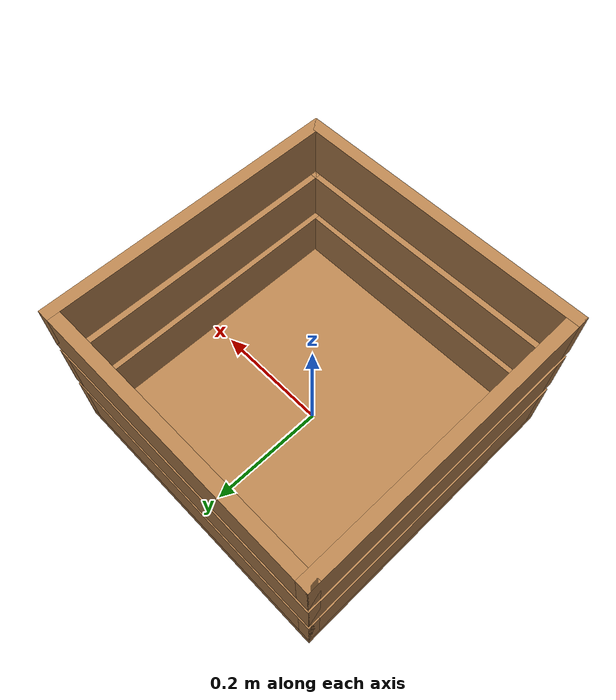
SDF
<?xml version='1.0' encoding='utf-8'?>
<sdf version="1.6">
  <model name="grape_harvest_crate">
    <static>true</static>
    <link name="crate">
      <visual name="bottom">
        <pose>0 0 0.01 0 0 0</pose>
        <geometry>
          <box>
            <size>0.5 0.5 0.02</size>
          </box>
        </geometry>
        <material>
          <script>
            <uri>file://media/materials/scripts/gazebo.material</uri>
            <name>Gazebo/Wood</name>
          </script>
        </material>
      </visual>
      <collision name="bottom">
        <pose>0 0 0.01 0 0 0</pose>
        <geometry>
          <box>
            <size>0.5 0.5 0.02</size>
          </box>
        </geometry>
      </collision>
      <visual name="front_slat0">
        <pose>0.24 0 0.0616667 0 0 0</pose>
        <geometry>
          <box>
            <size>0.02 0.5 0.0833333</size>
          </box>
        </geometry>
        <material>
          <script>
            <uri>file://media/materials/scripts/gazebo.material</uri>
            <name>Gazebo/Wood</name>
          </script>
        </material>
      </visual>
      <visual name="front_slat1">
        <pose>0.24 0 0.16 0 0 0</pose>
        <geometry>
          <box>
            <size>0.02 0.5 0.0833333</size>
          </box>
        </geometry>
        <material>
          <script>
            <uri>file://media/materials/scripts/gazebo.material</uri>
            <name>Gazebo/Wood</name>
          </script>
        </material>
      </visual>
      <visual name="front_slat2">
        <pose>0.24 0 0.258333 0 0 0</pose>
        <geometry>
          <box>
            <size>0.02 0.5 0.0833333</size>
          </box>
        </geometry>
        <material>
          <script>
            <uri>file://media/materials/scripts/gazebo.material</uri>
            <name>Gazebo/Wood</name>
          </script>
        </material>
      </visual>
      <collision name="front">
        <pose>0.24 0 0.16 0 0 0</pose>
        <geometry>
          <box>
            <size>0.02 0.5 0.28</size>
          </box>
        </geometry>
      </collision>
      <visual name="back_slat0">
        <pose>-0.24 0 0.0616667 0 0 0</pose>
        <geometry>
          <box>
            <size>0.02 0.5 0.0833333</size>
          </box>
        </geometry>
        <material>
          <script>
            <uri>file://media/materials/scripts/gazebo.material</uri>
            <name>Gazebo/Wood</name>
          </script>
        </material>
      </visual>
      <visual name="back_slat1">
        <pose>-0.24 0 0.16 0 0 0</pose>
        <geometry>
          <box>
            <size>0.02 0.5 0.0833333</size>
          </box>
        </geometry>
        <material>
          <script>
            <uri>file://media/materials/scripts/gazebo.material</uri>
            <name>Gazebo/Wood</name>
          </script>
        </material>
      </visual>
      <visual name="back_slat2">
        <pose>-0.24 0 0.258333 0 0 0</pose>
        <geometry>
          <box>
            <size>0.02 0.5 0.0833333</size>
          </box>
        </geometry>
        <material>
          <script>
            <uri>file://media/materials/scripts/gazebo.material</uri>
            <name>Gazebo/Wood</name>
          </script>
        </material>
      </visual>
      <collision name="back">
        <pose>-0.24 0 0.16 0 0 0</pose>
        <geometry>
          <box>
            <size>0.02 0.5 0.28</size>
          </box>
        </geometry>
      </collision>
      <visual name="left_slat0">
        <pose>0 0.24 0.0616667 0 0 0</pose>
        <geometry>
          <box>
            <size>0.5 0.02 0.0833333</size>
          </box>
        </geometry>
        <material>
          <script>
            <uri>file://media/materials/scripts/gazebo.material</uri>
            <name>Gazebo/Wood</name>
          </script>
        </material>
      </visual>
      <visual name="left_slat1">
        <pose>0 0.24 0.16 0 0 0</pose>
        <geometry>
          <box>
            <size>0.5 0.02 0.0833333</size>
          </box>
        </geometry>
        <material>
          <script>
            <uri>file://media/materials/scripts/gazebo.material</uri>
            <name>Gazebo/Wood</name>
          </script>
        </material>
      </visual>
      <visual name="left_slat2">
        <pose>0 0.24 0.258333 0 0 0</pose>
        <geometry>
          <box>
            <size>0.5 0.02 0.0833333</size>
          </box>
        </geometry>
        <material>
          <script>
            <uri>file://media/materials/scripts/gazebo.material</uri>
            <name>Gazebo/Wood</name>
          </script>
        </material>
      </visual>
      <collision name="left">
        <pose>0 0.24 0.16 0 0 0</pose>
        <geometry>
          <box>
            <size>0.5 0.02 0.28</size>
          </box>
        </geometry>
      </collision>
      <visual name="right_slat0">
        <pose>0 -0.24 0.0616667 0 0 0</pose>
        <geometry>
          <box>
            <size>0.5 0.02 0.0833333</size>
          </box>
        </geometry>
        <material>
          <script>
            <uri>file://media/materials/scripts/gazebo.material</uri>
            <name>Gazebo/Wood</name>
          </script>
        </material>
      </visual>
      <visual name="right_slat1">
        <pose>0 -0.24 0.16 0 0 0</pose>
        <geometry>
          <box>
            <size>0.5 0.02 0.0833333</size>
          </box>
        </geometry>
        <material>
          <script>
            <uri>file://media/materials/scripts/gazebo.material</uri>
            <name>Gazebo/Wood</name>
          </script>
        </material>
      </visual>
      <visual name="right_slat2">
        <pose>0 -0.24 0.258333 0 0 0</pose>
        <geometry>
          <box>
            <size>0.5 0.02 0.0833333</size>
          </box>
        </geometry>
        <material>
          <script>
            <uri>file://media/materials/scripts/gazebo.material</uri>
            <name>Gazebo/Wood</name>
          </script>
        </material>
      </visual>
      <collision name="right">
        <pose>0 -0.24 0.16 0 0 0</pose>
        <geometry>
          <box>
            <size>0.5 0.02 0.28</size>
          </box>
        </geometry>
      </collision>
    </link>
  </model>
</sdf>
